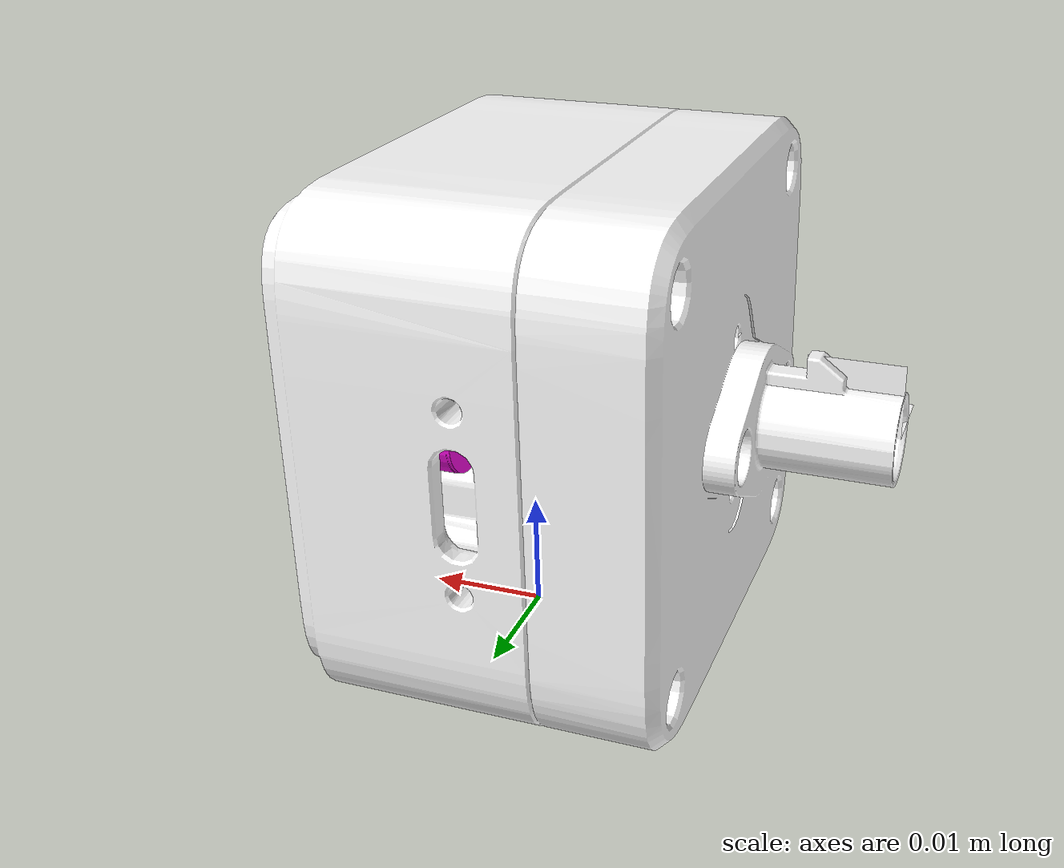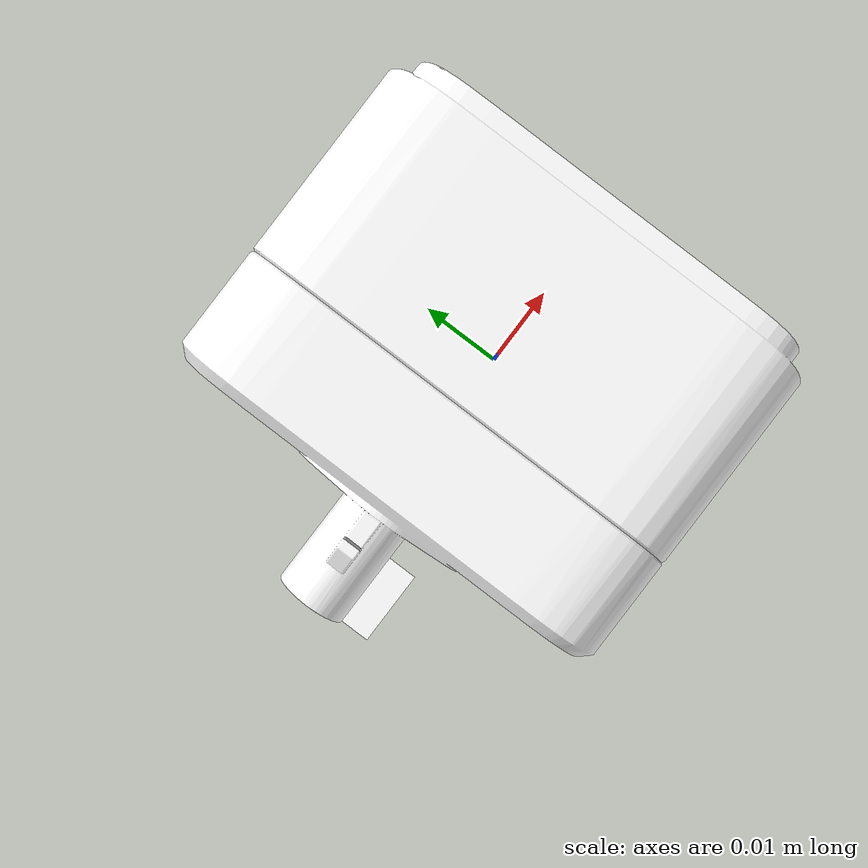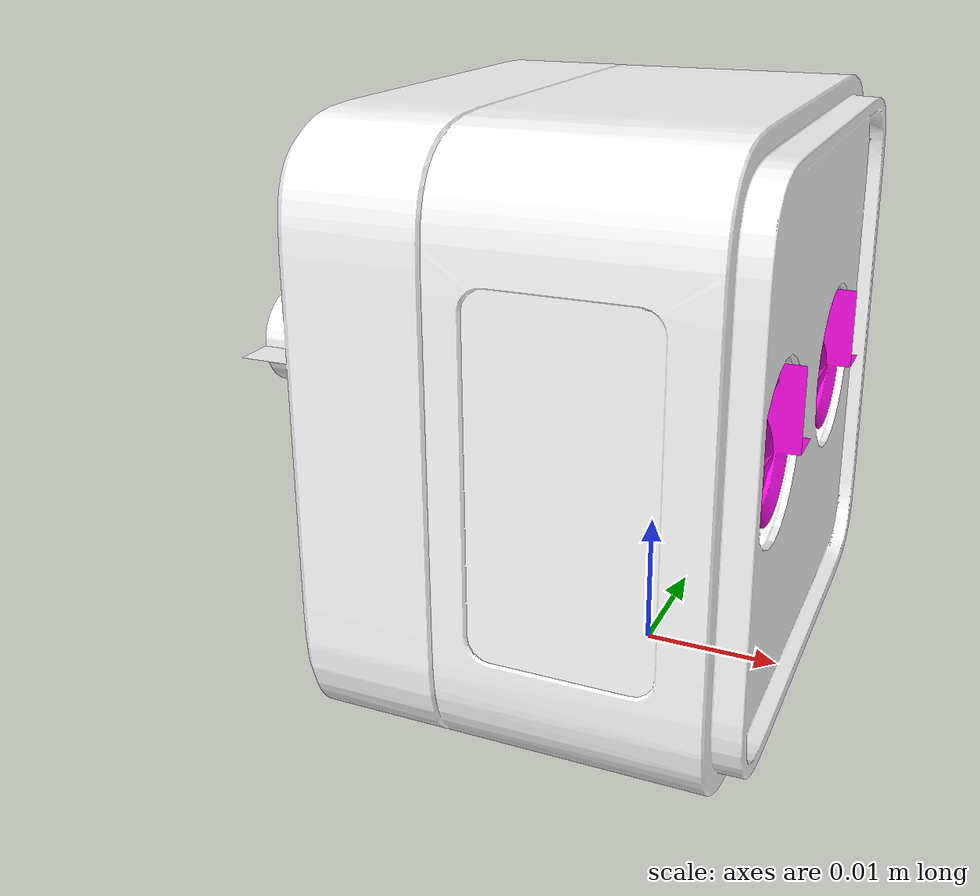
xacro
<?xml version="1.0" encoding="utf-8"?>
<robot name="gemini_309_g" xmlns:xacro="http://ros.org/wiki/xacro">
    <xacro:include filename="gemini_309_g.urdf.xacro"/>
    <!-- Define a virtual root link -->
  <link name="base_link"/>

  <!-- Connect the virtual root to the actual base link -->
  <joint name="base_link_to_camera_bottom_screw" type="fixed">
    <parent link="base_link"/>
    <child link="camera_bottom_screw"/>
    <origin xyz="0 0 0" rpy="0 0 0"/>
  </joint>
</robot>

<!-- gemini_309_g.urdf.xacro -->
<robot xmlns:xacro="http://ros.org/wiki/xacro" name="gemini_309_g">
  <xacro:property name="mesh_path" value="package://orbbec_camera/meshes/gemini309_g/" />
  <link
    name="camera_link" />
  <joint
    name="camera_link"
    type="fixed">
    <origin
      xyz="0.008050000000002 0.009003950979152 0.0209939609855101"
      rpy="0 0 0" />
    <parent
      link="camera_bottom_screw" />
    <child
      link="camera_link" />
    <axis
      xyz="0 0 0" />
  </joint>
  <link
    name="camera_left_color_optical_frame" />
  <joint
    name="camera_left_color_optical_frame"
    type="fixed">
    <origin
      xyz="0 0 0"
      rpy="-1.5707963267949 0 -1.5707963267949" />
    <parent
      link="camera_left_color_frame" />
    <child
      link="camera_left_color_optical_frame" />
    <axis
      xyz="0 0 0" />
  </joint>
  <link
    name="camera_right_color_optical_frame" />
  <joint
    name="camera_right_color_optical_frame"
    type="fixed">
    <origin
      xyz="0 0 0"
      rpy="-1.5707963267949 0 -1.5707963267949" />
    <parent
      link="camera_right_color_frame" />
    <child
      link="camera_right_color_optical_frame" />
    <axis
      xyz="0 0 0" />
  </joint>
  <link
    name="camera_bottom_screw">
    <inertial>
      <origin
        xyz="0.000175737970584729 -0.00394983412061421 -0.0206345858068119"
        rpy="0 0 0" />
      <mass
        value="0.0249222072968717" />
      <inertia
        ixx="5.00403811957311E-06"
        ixy="-7.2306914084516E-10"
        ixz="2.22927661310567E-08"
        iyy="8.89433351709202E-06"
        iyz="-2.67333736513775E-09"
        izz="4.83457340761002E-06" />
    </inertial>
    <visual>
      <origin
        xyz="-0.0234099999999966 0 0.0209939609855071"
        rpy="3.141592653589793 0 1.570796326794897" />
      <geometry>
        <mesh
          filename="${mesh_path}FAKRA.STL" />
      </geometry>
      <material
        name="">
        <color
          rgba="1 1 1 1" />
      </material>
    </visual>
    <collision>
      <origin
        xyz="-0.0234099999999966 0 0.0209939609855071"
        rpy="3.141592653589793 0 1.570796326794897" />
      <geometry>
        <mesh
          filename="${mesh_path}FAKRA.STL" />
      </geometry>
    </collision>
  </link>
  <link
    name="camera_right_color_frame">
    <inertial>
      <origin
        xyz="-1.17602281696563E-06 -0.0034693462830589 0.000376234001467319"
        rpy="0 0 0" />
      <mass
        value="0.000735468334566907" />
      <inertia
        ixx="7.92202560415908E-09"
        ixy="-1.95146774676002E-12"
        ixz="-9.33532490494195E-12"
        iyy="9.93176003014812E-09"
        iyz="-6.12381828511392E-12"
        izz="8.02751620920214E-09" />
    </inertial>
    <visual>
      <origin
        xyz="0 0 0"
        rpy="3.141592653589793 0 1.570796326794897" />
      <geometry>
        <mesh
          filename="${mesh_path}RGB_R.STL" />
      </geometry>
      <material
        name="">
        <color
          rgba="0.956862745098039 0.0470588235294118 0.874509803921569 1" />
      </material>
    </visual>
    <collision>
      <origin
        xyz="0 0 0"
        rpy="3.141592653589793 0 1.570796326794897" />
      <geometry>
        <mesh
          filename="${mesh_path}RGB_R.STL" />
      </geometry>
    </collision>
  </link>
  <joint
    name="camera_right_color_frame"
    type="fixed">
    <origin
      xyz="0 -0.018 0"
      rpy="0 0 0" />
    <parent
      link="camera_left_color_frame" />
    <child
      link="camera_right_color_frame" />
    <axis
      xyz="0 0 0" />
  </joint>
  <link
    name="camera_left_color_frame">
    <inertial>
      <origin
        xyz="-1.17602281780871E-06 -0.00346934628305838 0.000376234001468585"
        rpy="0 0 0" />
      <mass
        value="0.000735468334566978" />
      <inertia
        ixx="7.92202562203234E-09"
        ixy="-1.95146773316204E-12"
        ixz="-9.33532489896924E-12"
        iyy="9.93175999833481E-09"
        iyz="-6.12381825718048E-12"
        izz="8.0275161952487E-09" />
    </inertial>
    <visual>
      <origin
        xyz="0 0 0"
        rpy="3.141592653589793 0 1.570796326794897" />
      <geometry>
        <mesh
          filename="${mesh_path}RGB_L.STL" />
      </geometry>
      <material
        name="">
        <color
          rgba="0.956862745098039 0.0470588235294118 0.874509803921569 1" />
      </material>
    </visual>
    <collision>
      <origin
        xyz="0 0 0"
        rpy="3.141592653589793 0 1.570796326794897" />
      <geometry>
        <mesh
          filename="${mesh_path}RGB_L.STL" />
      </geometry>
    </collision>
  </link>
  <joint
    name="camera_left_color_frame"
    type="fixed">
    <origin
      xyz="0 0 0"
      rpy="0 0 0" />
    <parent
      link="camera_link" />
    <child
      link="camera_left_color_frame" />
    <axis
      xyz="0 0 0" />
  </joint>
</robot>
